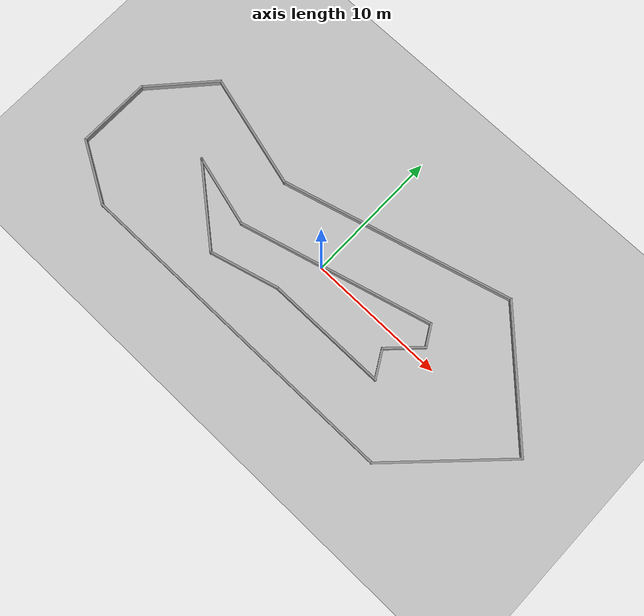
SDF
<?xml version="1.0"?>
<sdf version="1.4">
    <world name="office">
        <include>
            <uri>model://sun</uri>
        </include>

        <include>
            <uri>model://ground_plane</uri>
        </include>

        <include>
            <uri>model://tunnel</uri>
            <pose>0 0 0 0 0 0</pose>
        </include>

        <gui>
            <camera name="user_camera">
                <pose>-1.62 -5.53 39.33 0 1.36 1.56</pose>
            </camera>
        </gui>
    </world>
</sdf>

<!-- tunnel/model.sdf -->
<sdf version='1.6'>
  <model name='tunnel'>
    <pose frame=''>-0.455874 1.01546 0 0 -0 0</pose>
    <link name='Wall_0'>
      <collision name='Wall_0_Collision'>
        <geometry>
          <box>
            <size>5.5 0.15 0.5</size>
          </box>
        </geometry>
        <pose frame=''>0 0 0.25 0 -0 0</pose>
      </collision>
      <visual name='Wall_0_Visual'>
        <pose frame=''>0 0 0.25 0 -0 0</pose>
        <geometry>
          <box>
            <size>5.5 0.15 0.5</size>
          </box>
        </geometry>
        <material>
          <script>
            <uri>file://media/materials/scripts/gazebo.material</uri>
            <name>Gazebo/Grey</name>
          </script>
          <ambient>1 1 1 1</ambient>
        </material>
        <meta>
          <layer>0</layer>
        </meta>
      </visual>
      <pose frame=''>-17.9191 -1.95346 0 0 -0 -1.5708</pose>
    </link>
    <link name='Wall_1'>
      <collision name='Wall_1_Collision'>
        <geometry>
          <box>
            <size>5 0.15 0.5</size>
          </box>
        </geometry>
        <pose frame=''>0 0 0.25 0 -0 0</pose>
      </collision>
      <visual name='Wall_1_Visual'>
        <pose frame=''>0 0 0.25 0 -0 0</pose>
        <geometry>
          <box>
            <size>5 0.15 0.5</size>
          </box>
        </geometry>
        <material>
          <script>
            <uri>file://media/materials/scripts/gazebo.material</uri>
            <name>Gazebo/Grey</name>
          </script>
          <ambient>1 1 1 1</ambient>
        </material>
        <meta>
          <layer>0</layer>
        </meta>
      </visual>
      <pose frame=''>-15.8191 -5.84096 0 0 -0 -0.523622</pose>
    </link>
    <link name='Wall_10'>
      <collision name='Wall_10_Collision'>
        <geometry>
          <box>
            <size>14.5 0.15 0.5</size>
          </box>
        </geometry>
        <pose frame=''>0 0 0.25 0 -0 0</pose>
      </collision>
      <visual name='Wall_10_Visual'>
        <pose frame=''>0 0 0.25 0 -0 0</pose>
        <geometry>
          <box>
            <size>14.5 0.15 0.5</size>
          </box>
        </geometry>
        <material>
          <script>
            <uri>file://media/materials/scripts/gazebo.material</uri>
            <name>Gazebo/Grey</name>
          </script>
          <ambient>1 1 1 1</ambient>
        </material>
        <meta>
          <layer>0</layer>
        </meta>
      </visual>
      <pose frame=''>0.937374 0.348543 0 0 -0 0.261796</pose>
    </link>
    <link name='Wall_11'>
      <collision name='Wall_11_Collision'>
        <geometry>
          <box>
            <size>1.75 0.15 0.5</size>
          </box>
        </geometry>
        <pose frame=''>0 0 0.25 0 -0 0</pose>
      </collision>
      <visual name='Wall_11_Visual'>
        <pose frame=''>0 0 0.25 0 -0 0</pose>
        <geometry>
          <box>
            <size>1.75 0.15 0.5</size>
          </box>
        </geometry>
        <material>
          <script>
            <uri>file://media/materials/scripts/gazebo.material</uri>
            <name>Gazebo/Grey</name>
          </script>
          <ambient>1 1 1 1</ambient>
        </material>
        <meta>
          <layer>0</layer>
        </meta>
      </visual>
      <pose frame=''>8.26787 1.51304 0 0 -0 -1.047</pose>
    </link>
    <link name='Wall_12'>
      <collision name='Wall_12_Collision'>
        <geometry>
          <box>
            <size>3 0.15 0.5</size>
          </box>
        </geometry>
        <pose frame=''>0 0 0.25 0 -0 0</pose>
      </collision>
      <visual name='Wall_12_Visual'>
        <pose frame=''>0 0 0.25 0 -0 0</pose>
        <geometry>
          <box>
            <size>3 0.15 0.5</size>
          </box>
        </geometry>
        <material>
          <script>
            <uri>file://media/materials/scripts/gazebo.material</uri>
            <name>Gazebo/Grey</name>
          </script>
          <ambient>1 1 1 1</ambient>
        </material>
        <meta>
          <layer>0</layer>
        </meta>
      </visual>
      <pose frame=''>7.65987 -0.186957 0 0 -0 -2.35644</pose>
    </link>
    <link name='Wall_13'>
      <collision name='Wall_13_Collision'>
        <geometry>
          <box>
            <size>2.25 0.15 0.5</size>
          </box>
        </geometry>
        <pose frame=''>0 0 0.25 0 -0 0</pose>
      </collision>
      <visual name='Wall_13_Visual'>
        <pose frame=''>0 0 0.25 0 -0 0</pose>
        <geometry>
          <box>
            <size>2.25 0.15 0.5</size>
          </box>
        </geometry>
        <material>
          <script>
            <uri>file://media/materials/scripts/gazebo.material</uri>
            <name>Gazebo/Grey</name>
          </script>
          <ambient>1 1 1 1</ambient>
        </material>
        <meta>
          <layer>0</layer>
        </meta>
      </visual>
      <pose frame=''>7.17687 -2.10396 0 0 -0 -1.04728</pose>
    </link>
    <link name='Wall_14'>
      <collision name='Wall_14_Collision'>
        <geometry>
          <box>
            <size>9 0.15 0.5</size>
          </box>
        </geometry>
        <pose frame=''>0 0 0.25 0 -0 0</pose>
      </collision>
      <visual name='Wall_14_Visual'>
        <pose frame=''>0 0 0.25 0 -0 0</pose>
        <geometry>
          <box>
            <size>9 0.15 0.5</size>
          </box>
        </geometry>
        <material>
          <script>
            <uri>file://media/materials/scripts/gazebo.material</uri>
            <name>Gazebo/Grey</name>
          </script>
          <ambient>1 1 1 1</ambient>
        </material>
        <meta>
          <layer>0</layer>
        </meta>
      </visual>
      <pose frame=''>3.27687 -3.01346 0 0 -0 3.14159</pose>
    </link>
    <link name='Wall_15'>
      <collision name='Wall_15_Collision'>
        <geometry>
          <box>
            <size>5.25 0.15 0.5</size>
          </box>
        </geometry>
        <pose frame=''>0 0 0.25 0 -0 0</pose>
      </collision>
      <visual name='Wall_15_Visual'>
        <pose frame=''>0 0 0.25 0 -0 0</pose>
        <geometry>
          <box>
            <size>5.25 0.15 0.5</size>
          </box>
        </geometry>
        <material>
          <script>
            <uri>file://media/materials/scripts/gazebo.material</uri>
            <name>Gazebo/Grey</name>
          </script>
          <ambient>1 1 1 1</ambient>
        </material>
        <meta>
          <layer>0</layer>
        </meta>
      </visual>
      <pose frame=''>-3.61112 -3.67346 0 0 -0 -2.87978</pose>
    </link>
    <link name='Wall_16'>
      <collision name='Wall_16_Collision'>
        <geometry>
          <box>
            <size>6.75346 0.15 0.5</size>
          </box>
        </geometry>
        <pose frame=''>0 0 0.25 0 -0 0</pose>
      </collision>
      <visual name='Wall_16_Visual'>
        <pose frame=''>0 0 0.25 0 -0 0</pose>
        <geometry>
          <box>
            <size>6.75346 0.15 0.5</size>
          </box>
        </geometry>
        <material>
          <script>
            <uri>file://media/materials/scripts/gazebo.material</uri>
            <name>Gazebo/Grey</name>
          </script>
          <ambient>1 1 1 1</ambient>
        </material>
        <meta>
          <layer>0</layer>
        </meta>
      </visual>
      <pose frame=''>-8.61763 -2.22846 0 0 -0 2.45025</pose>
    </link>
    <link name='Wall_2'>
      <collision name='Wall_2_Collision'>
        <geometry>
          <box>
            <size>25 0.15 0.5</size>
          </box>
        </geometry>
        <pose frame=''>0 0 0.25 0 -0 0</pose>
      </collision>
      <visual name='Wall_2_Visual'>
        <pose frame=''>0 0 0.25 0 -0 0</pose>
        <geometry>
          <box>
            <size>25 0.15 0.5</size>
          </box>
        </geometry>
        <material>
          <script>
            <uri>file://media/materials/scripts/gazebo.material</uri>
            <name>Gazebo/Grey</name>
          </script>
          <ambient>1 1 1 1</ambient>
        </material>
        <meta>
          <layer>0</layer>
        </meta>
      </visual>
      <pose frame=''>-1.29413 -7.05346 0 0 -0 0</pose>
    </link>
    <link name='Wall_3'>
      <collision name='Wall_3_Collision'>
        <geometry>
          <box>
            <size>9.75 0.15 0.5</size>
          </box>
        </geometry>
        <pose frame=''>0 0 0.25 0 -0 0</pose>
      </collision>
      <visual name='Wall_3_Visual'>
        <pose frame=''>0 0 0.25 0 -0 0</pose>
        <geometry>
          <box>
            <size>9.75 0.15 0.5</size>
          </box>
        </geometry>
        <material>
          <script>
            <uri>file://media/materials/scripts/gazebo.material</uri>
            <name>Gazebo/Grey</name>
          </script>
          <ambient>1 1 1 1</ambient>
        </material>
        <meta>
          <layer>0</layer>
        </meta>
      </visual>
      <pose frame=''>14.5249 -3.65946 0 0 -0 0.785398</pose>
    </link>
    <link name='Wall_4'>
      <collision name='Wall_4_Collision'>
        <geometry>
          <box>
            <size>10.5 0.15 0.5</size>
          </box>
        </geometry>
        <pose frame=''>0 0 0.25 0 -0 0</pose>
      </collision>
      <visual name='Wall_4_Visual'>
        <pose frame=''>0 0 0.25 0 -0 0</pose>
        <geometry>
          <box>
            <size>10.5 0.15 0.5</size>
          </box>
        </geometry>
        <material>
          <script>
            <uri>file://media/materials/scripts/gazebo.material</uri>
            <name>Gazebo/Grey</name>
          </script>
          <ambient>1 1 1 1</ambient>
        </material>
        <meta>
          <layer>0</layer>
        </meta>
      </visual>
      <pose frame=''>14.2599 3.39404 0 0 -0 2.35613</pose>
    </link>
    <link name='Wall_5'>
      <collision name='Wall_5_Collision'>
        <geometry>
          <box>
            <size>17.2611 0.15 0.5</size>
          </box>
        </geometry>
        <pose frame=''>0 0 0.25 0 -0 0</pose>
      </collision>
      <visual name='Wall_5_Visual'>
        <pose frame=''>0 0 0.25 0 -0 0</pose>
        <geometry>
          <box>
            <size>17.2611 0.15 0.5</size>
          </box>
        </geometry>
        <material>
          <script>
            <uri>file://media/materials/scripts/gazebo.material</uri>
            <name>Gazebo/Grey</name>
          </script>
          <ambient>1 1 1 1</ambient>
        </material>
        <meta>
          <layer>0</layer>
        </meta>
      </visual>
      <pose frame=''>2.34187 4.82054 0 0 -0 -2.87753</pose>
    </link>
    <link name='Wall_6'>
      <collision name='Wall_6_Collision'>
        <geometry>
          <box>
            <size>8.74955 0.15 0.5</size>
          </box>
        </geometry>
        <pose frame=''>0 0 0.25 0 -0 0</pose>
      </collision>
      <visual name='Wall_6_Visual'>
        <pose frame=''>0 0 0.25 0 -0 0</pose>
        <geometry>
          <box>
            <size>8.74955 0.15 0.5</size>
          </box>
        </geometry>
        <material>
          <script>
            <uri>file://media/materials/scripts/gazebo.material</uri>
            <name>Gazebo/Grey</name>
          </script>
          <ambient>1 1 1 1</ambient>
        </material>
        <meta>
          <layer>0</layer>
        </meta>
      </visual>
      <pose frame=''>-10.0706 3.70004 0 0 -0 2.87989</pose>
    </link>
    <link name='Wall_7'>
      <collision name='Wall_7_Collision'>
        <geometry>
          <box>
            <size>5.66265 0.15 0.5</size>
          </box>
        </geometry>
        <pose frame=''>0 0 0.25 0 -0 0</pose>
      </collision>
      <visual name='Wall_7_Visual'>
        <pose frame=''>0 0 0.25 0 -0 0</pose>
        <geometry>
          <box>
            <size>5.66265 0.15 0.5</size>
          </box>
        </geometry>
        <material>
          <script>
            <uri>file://media/materials/scripts/gazebo.material</uri>
            <name>Gazebo/Grey</name>
          </script>
          <ambient>1 1 1 1</ambient>
        </material>
        <meta>
          <layer>0</layer>
        </meta>
      </visual>
      <pose frame=''>-16.0716 2.76704 0 0 -0 -2.30538</pose>
    </link>
    <link name='Wall_9'>
      <collision name='Wall_9_Collision'>
        <geometry>
          <box>
            <size>5.5 0.15 0.5</size>
          </box>
        </geometry>
        <pose frame=''>0 0 0.25 0 -0 0</pose>
      </collision>
      <visual name='Wall_9_Visual'>
        <pose frame=''>0 0 0.25 0 -0 0</pose>
        <geometry>
          <box>
            <size>5.5 0.15 0.5</size>
          </box>
        </geometry>
        <material>
          <script>
            <uri>file://media/materials/scripts/gazebo.material</uri>
            <name>Gazebo/Grey</name>
          </script>
          <ambient>1 1 1 1</ambient>
        </material>
        <meta>
          <layer>0</layer>
        </meta>
      </visual>
      <pose frame=''>-8.57713 -0.815957 0 0 -0 -0.261842</pose>
    </link>
    <static>1</static>
  </model>
</sdf>
